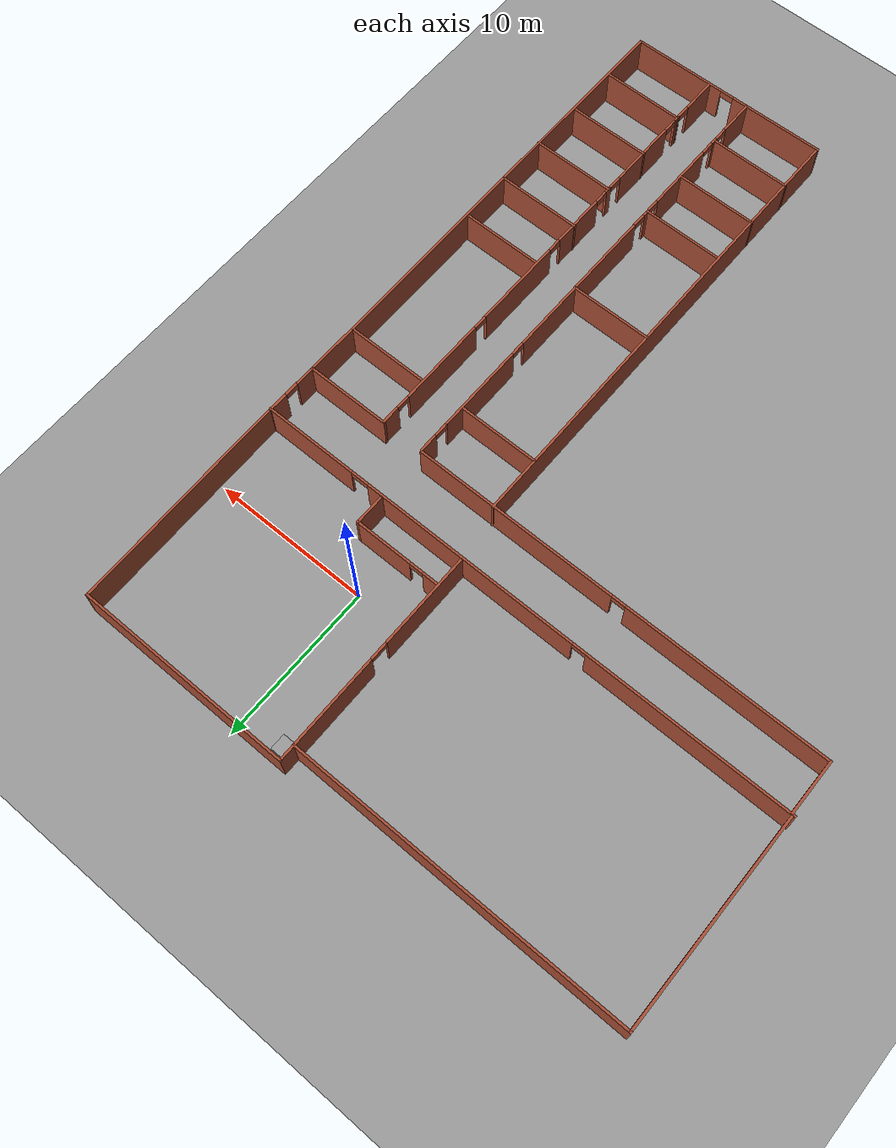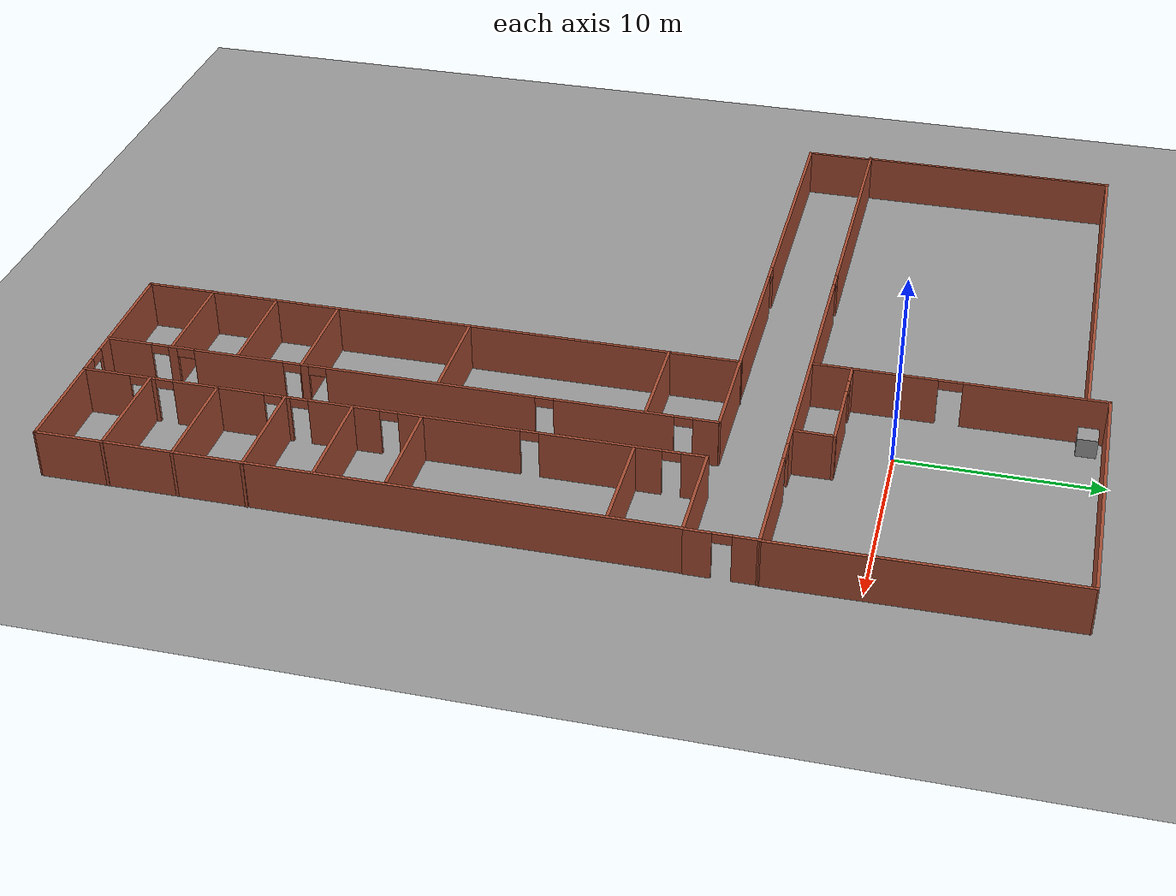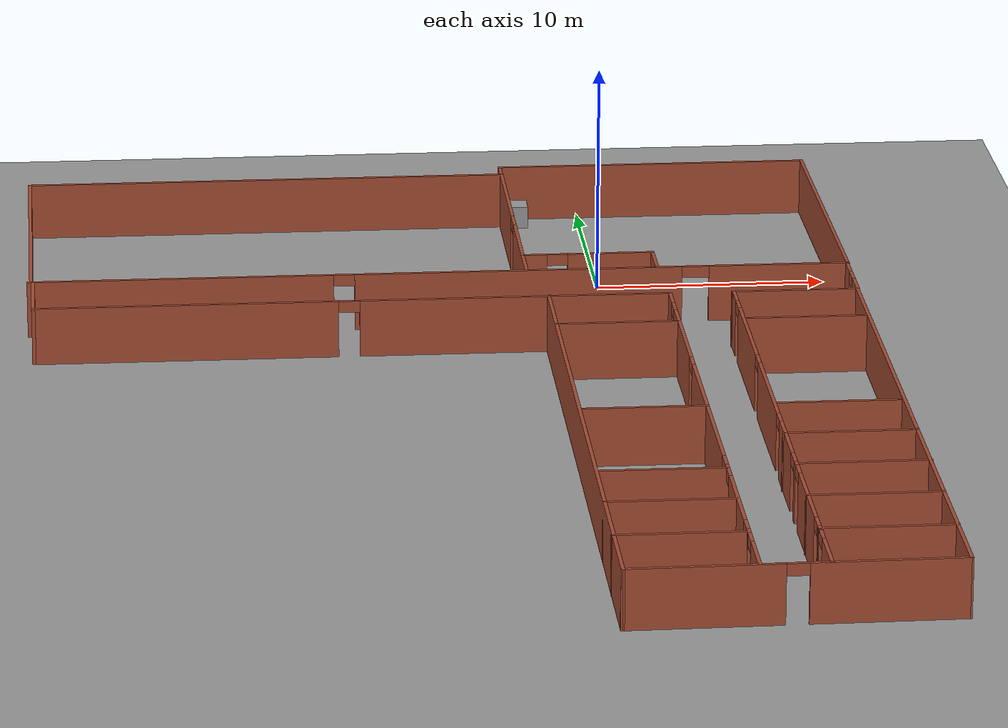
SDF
<sdf version="1.7">
 <model name="fapsmap.obj">
  <light name="sun" type="directional">
   <pose>0 0 10 0 -0 0</pose>
   <diffuse>0.8 0.8 0.8 1</diffuse>
   <specular>0.2 0.2 0.2 1</specular>
   <attenuation>
    <range>1000</range>
    <constant>0.9</constant>
    <linear>0.01</linear>
    <quadratic>0.001</quadratic>
   </attenuation>
   <direction>-0.5 0.1 -0.9</direction>
   <spot><inner_angle>0</inner_angle><outer_angle>0</outer_angle><falloff>0</falloff></spot>
  </light>
  <model name="ground_plane">
   <static>1</static>
   <link name="link">
    <collision name="collision">
     <geometry><plane><normal>0 0 1</normal><size>100 100</size></plane></geometry>
     <surface><friction><ode><mu>100</mu><mu2>50</mu2></ode></friction></surface>
    </collision>
    <visual name="visual">
     <cast_shadows>0</cast_shadows>
     <geometry><plane><normal>0 0 1</normal><size>100 100</size></plane></geometry>
     <material>
      <script><uri>file://media/materials/scripts/gazebo.material</uri><name>Gazebo/Grey</name></script>
     </material>
    </visual>
   </link>
  </model>
  <gravity>0 0 -9.8</gravity>
  <magnetic_field>6e-06 2.3e-05 -4.2e-05</magnetic_field>
  <atmosphere type="adiabatic"/>
  <physics type="ode">
   <max_step_size>0.001</max_step_size>
   <real_time_factor>1</real_time_factor>
   <real_time_update_rate>1000</real_time_update_rate>
  </physics>
  <scene><ambient>0.4 0.4 0.4 1</ambient><background>0.7 0.7 0.7 1</background><shadows>1</shadows></scene>
  <audio><device>default</device></audio>
  <spherical_coordinates>
   <surface_model>EARTH_WGS84</surface_model>
   <latitude_deg>0</latitude_deg>
   <longitude_deg>0</longitude_deg>
   <elevation>0</elevation>
   <heading_deg>0</heading_deg>
  </spherical_coordinates>
  <model name="fapsmap.obj">
   <pose>-7.30116 -14.55 0 0 -0 0</pose>
   <link name="Wall_20">
    <pose>-0.000299 9.9725 0 0 -0 3.1403</pose>
    <visual name="Wall_20_Visual_0">
     <pose>-14.7424 0 1.25 0 -0 0</pose>
     <geometry><box><size>6.13838 0.15 2.5</size></box></geometry>
     <material>
      <script><uri>file://media/materials/scripts/gazebo.material</uri><name>Gazebo/Bricks</name></script>
      <ambient>1 1 1 1</ambient>
     </material>
     <meta><layer>0</layer></meta>
    </visual>
    <collision name="Wall_20_Collision_0">
     <geometry><box><size>6.13838 0.15 2.5</size></box></geometry>
     <pose>-14.7424 0 1.25 0 -0 0</pose>
    </collision>
    <visual name="Wall_20_Visual_1">
     <pose>-3.4046 0 1.25 0 -0 0</pose>
     <geometry><box><size>14.2081 0.15 2.5</size></box></geometry>
     <material>
      <script><uri>file://media/materials/scripts/gazebo.material</uri><name>Gazebo/Bricks</name></script>
      <ambient>1 1 1 1</ambient>
     </material>
     <meta><layer>0</layer></meta>
    </visual>
    <collision name="Wall_20_Collision_1">
     <geometry><box><size>14.2081 0.15 2.5</size></box></geometry>
     <pose>-3.4046 0 1.25 0 -0 0</pose>
    </collision>
    <visual name="Wall_20_Visual_2">
     <pose>11.2055 0 1.25 0 -0 0</pose>
     <geometry><box><size>13.2121 0.15 2.5</size></box></geometry>
     <material>
      <script><uri>file://media/materials/scripts/gazebo.material</uri><name>Gazebo/Bricks</name></script>
      <ambient>1 1 1 1</ambient>
     </material>
     <meta><layer>0</layer></meta>
    </visual>
    <collision name="Wall_20_Collision_2">
     <geometry><box><size>13.2121 0.15 2.5</size></box></geometry>
     <pose>11.2055 0 1.25 0 -0 0</pose>
    </collision>
    <visual name="Wall_20_Visual_3">
     <pose>-11.0909 0 2.25 0 -0 0</pose>
     <geometry><box><size>1.16451 0.15 0.5</size></box></geometry>
     <material>
      <script><uri>file://media/materials/scripts/gazebo.material</uri><name>Gazebo/Bricks</name></script>
      <ambient>1 1 1 1</ambient>
     </material>
     <meta><layer>0</layer></meta>
    </visual>
    <collision name="Wall_20_Collision_3">
     <geometry><box><size>1.16451 0.15 0.5</size></box></geometry>
     <pose>-11.0909 0 2.25 0 -0 0</pose>
    </collision>
    <visual name="Wall_20_Visual_4">
     <pose>4.14945 0 2.25 0 -0 0</pose>
     <geometry><box><size>0.9 0.15 0.5</size></box></geometry>
     <material>
      <script><uri>file://media/materials/scripts/gazebo.material</uri><name>Gazebo/Bricks</name></script>
      <ambient>1 1 1 1</ambient>
     </material>
     <meta><layer>0</layer></meta>
    </visual>
    <collision name="Wall_20_Collision_4">
     <geometry><box><size>0.9 0.15 0.5</size></box></geometry>
     <pose>4.14945 0 2.25 0 -0 0</pose>
    </collision>
   </link>
   <link name="Wall_24">
    <collision name="Wall_24_Collision">
     <geometry><box><size>14.4345 0.15 2.5</size></box></geometry>
     <pose>0 0 1.25 0 -0 0</pose>
    </collision>
    <visual name="Wall_24_Visual">
     <pose>0 0 1.25 0 -0 0</pose>
     <geometry><box><size>14.4345 0.15 2.5</size></box></geometry>
     <material>
      <script><uri>file://media/materials/scripts/gazebo.material</uri><name>Gazebo/Bricks</name></script>
      <ambient>1 1 1 1</ambient>
     </material>
     <meta><layer>0</layer></meta>
    </visual>
    <pose>17.669 17.0915 0 0 -0 1.58022</pose>
   </link>
   <link name="Wall_25">
    <collision name="Wall_25_Collision">
     <geometry><box><size>14 0.15 2.5</size></box></geometry>
     <pose>0 0 1.25 0 -0 0</pose>
    </collision>
    <visual name="Wall_25_Visual">
     <pose>0 0 1.25 0 -0 0</pose>
     <geometry><box><size>14 0.15 2.5</size></box></geometry>
     <material>
      <script><uri>file://media/materials/scripts/gazebo.material</uri><name>Gazebo/Bricks</name></script>
      <ambient>1 1 1 1</ambient>
     </material>
     <meta><layer>0</layer></meta>
    </visual>
    <pose>10.6767 24.2335 0 0 -0 3.14159</pose>
   </link>
   <link name="Wall_26">
    <pose>3.75167 17.1835 0 0 -0 -1.5708</pose>
    <visual name="Wall_26_Visual_0">
     <pose>-3.62942 0 1.25 0 -0 0</pose>
     <geometry><box><size>6.99116 0.15 2.5</size></box></geometry>
     <material>
      <script><uri>file://media/materials/scripts/gazebo.material</uri><name>Gazebo/Bricks</name></script>
      <ambient>1 1 1 1</ambient>
     </material>
     <meta><layer>0</layer></meta>
    </visual>
    <collision name="Wall_26_Collision_0">
     <geometry><box><size>6.99116 0.15 2.5</size></box></geometry>
     <pose>-3.62942 0 1.25 0 -0 0</pose>
    </collision>
    <visual name="Wall_26_Visual_1">
     <pose>4.08058 0 1.25 0 -0 0</pose>
     <geometry><box><size>6.08884 0.15 2.5</size></box></geometry>
     <material>
      <script><uri>file://media/materials/scripts/gazebo.material</uri><name>Gazebo/Bricks</name></script>
      <ambient>1 1 1 1</ambient>
     </material>
     <meta><layer>0</layer></meta>
    </visual>
    <collision name="Wall_26_Collision_1">
     <geometry><box><size>6.08884 0.15 2.5</size></box></geometry>
     <pose>4.08058 0 1.25 0 -0 0</pose>
    </collision>
    <visual name="Wall_26_Visual_2">
     <pose>0.451159 0 2.25 0 -0 0</pose>
     <geometry><box><size>1.17 0.15 0.5</size></box></geometry>
     <material>
      <script><uri>file://media/materials/scripts/gazebo.material</uri><name>Gazebo/Bricks</name></script>
      <ambient>1 1 1 1</ambient>
     </material>
     <meta><layer>0</layer></meta>
    </visual>
    <collision name="Wall_26_Collision_2">
     <geometry><box><size>1.17 0.15 0.5</size></box></geometry>
     <pose>0.451159 0 2.25 0 -0 0</pose>
    </collision>
   </link>
   <link name="Wall_28">
    <collision name="Wall_28_Collision">
     <geometry><box><size>21.5 0.15 2.5</size></box></geometry>
     <pose>0 0 1.25 0 -0 0</pose>
    </collision>
    <visual name="Wall_28_Visual">
     <pose>0 0 1.25 0 -0 0</pose>
     <geometry><box><size>21.5 0.15 2.5</size></box></geometry>
     <material>
      <script><uri>file://media/materials/scripts/gazebo.material</uri><name>Gazebo/Bricks</name></script>
      <ambient>1 1 1 1</ambient>
     </material>
     <meta><layer>0</layer></meta>
    </visual>
    <pose>-6.95273 23.218 0 0 -0 3.14159</pose>
   </link>
   <link name="Wall_29">
    <collision name="Wall_29_Collision">
     <geometry><box><size>13.25 0.15 2.5</size></box></geometry>
     <pose>0 0 1.25 0 -0 0</pose>
    </collision>
    <visual name="Wall_29_Visual">
     <pose>0 0 1.25 0 -0 0</pose>
     <geometry><box><size>13.25 0.15 2.5</size></box></geometry>
     <material>
      <script><uri>file://media/materials/scripts/gazebo.material</uri><name>Gazebo/Bricks</name></script>
      <ambient>1 1 1 1</ambient>
     </material>
     <meta><layer>0</layer></meta>
    </visual>
    <pose>-17.6277 16.668 0 0 -0 -1.5708</pose>
   </link>
   <link name="Wall_33">
    <pose>17.7055 8.30531 0 0 -0 -1.5708</pose>
    <visual name="Wall_33_Visual_0">
     <pose>-1.0981 0 1.25 0 -0 0</pose>
     <geometry><box><size>1.30381 0.15 2.5</size></box></geometry>
     <material>
      <script><uri>file://media/materials/scripts/gazebo.material</uri><name>Gazebo/Bricks</name></script>
      <ambient>1 1 1 1</ambient>
     </material>
     <meta><layer>0</layer></meta>
    </visual>
    <collision name="Wall_33_Collision_0">
     <geometry><box><size>1.30381 0.15 2.5</size></box></geometry>
     <pose>-1.0981 0 1.25 0 -0 0</pose>
    </collision>
    <visual name="Wall_33_Visual_1">
     <pose>1.1019 0 1.25 0 -0 0</pose>
     <geometry><box><size>1.29619 0.15 2.5</size></box></geometry>
     <material>
      <script><uri>file://media/materials/scripts/gazebo.material</uri><name>Gazebo/Bricks</name></script>
      <ambient>1 1 1 1</ambient>
     </material>
     <meta><layer>0</layer></meta>
    </visual>
    <collision name="Wall_33_Collision_1">
     <geometry><box><size>1.29619 0.15 2.5</size></box></geometry>
     <pose>1.1019 0 1.25 0 -0 0</pose>
    </collision>
    <visual name="Wall_33_Visual_2">
     <pose>0.003805 0 2.25 0 -0 0</pose>
     <geometry><box><size>0.9 0.15 0.5</size></box></geometry>
     <material>
      <script><uri>file://media/materials/scripts/gazebo.material</uri><name>Gazebo/Bricks</name></script>
      <ambient>1 1 1 1</ambient>
     </material>
     <meta><layer>0</layer></meta>
    </visual>
    <collision name="Wall_33_Collision_2">
     <geometry><box><size>0.9 0.15 0.5</size></box></geometry>
     <pose>0.003805 0 2.25 0 -0 0</pose>
    </collision>
   </link>
   <link name="Wall_39">
    <collision name="Wall_39_Collision">
     <geometry><box><size>5.5 0.15 2.5</size></box></geometry>
     <pose>0 0 1.25 0 -0 0</pose>
    </collision>
    <visual name="Wall_39_Visual">
     <pose>0 0 1.25 0 -0 0</pose>
     <geometry><box><size>5.5 0.15 2.5</size></box></geometry>
     <material>
      <script><uri>file://media/materials/scripts/gazebo.material</uri><name>Gazebo/Bricks</name></script>
      <ambient>1 1 1 1</ambient>
     </material>
     <meta><layer>0</layer></meta>
    </visual>
    <pose>15.0039 6.56104 0 0 -0 0</pose>
   </link>
   <link name="Wall_41">
    <pose>-4.00364 6.5805 0 0 -0 3.14159</pose>
    <visual name="Wall_41_Visual_0">
     <pose>-6.97405 0 1.25 0 -0 0</pose>
     <geometry><box><size>13.3019 0.15 2.5</size></box></geometry>
     <material>
      <script><uri>file://media/materials/scripts/gazebo.material</uri><name>Gazebo/Bricks</name></script>
      <ambient>1 1 1 1</ambient>
     </material>
     <meta><layer>0</layer></meta>
    </visual>
    <collision name="Wall_41_Collision_0">
     <geometry><box><size>13.3019 0.15 2.5</size></box></geometry>
     <pose>-6.97405 0 1.25 0 -0 0</pose>
    </collision>
    <visual name="Wall_41_Visual_1">
     <pose>7.10095 0 1.25 0 -0 0</pose>
     <geometry><box><size>13.0481 0.15 2.5</size></box></geometry>
     <material>
      <script><uri>file://media/materials/scripts/gazebo.material</uri><name>Gazebo/Bricks</name></script>
      <ambient>1 1 1 1</ambient>
     </material>
     <meta><layer>0</layer></meta>
    </visual>
    <collision name="Wall_41_Collision_1">
     <geometry><box><size>13.0481 0.15 2.5</size></box></geometry>
     <pose>7.10095 0 1.25 0 -0 0</pose>
    </collision>
    <visual name="Wall_41_Visual_2">
     <pose>0.126898 0 2.25 0 -0 0</pose>
     <geometry><box><size>0.9 0.15 0.5</size></box></geometry>
     <material>
      <script><uri>file://media/materials/scripts/gazebo.material</uri><name>Gazebo/Bricks</name></script>
      <ambient>1 1 1 1</ambient>
     </material>
     <meta><layer>0</layer></meta>
    </visual>
    <collision name="Wall_41_Collision_2">
     <geometry><box><size>0.9 0.15 0.5</size></box></geometry>
     <pose>0.126898 0 2.25 0 -0 0</pose>
    </collision>
   </link>
   <link name="Wall_42">
    <collision name="Wall_42_Collision">
     <geometry><box><size>3.5 0.15 2.5</size></box></geometry>
     <pose>0 0 1.25 0 -0 0</pose>
    </collision>
    <visual name="Wall_42_Visual">
     <pose>0 0 1.25 0 -0 0</pose>
     <geometry><box><size>3.5 0.15 2.5</size></box></geometry>
     <material>
      <script><uri>file://media/materials/scripts/gazebo.material</uri><name>Gazebo/Bricks</name></script>
      <ambient>1 1 1 1</ambient>
     </material>
     <meta><layer>0</layer></meta>
    </visual>
    <pose>-17.5536 8.2555 0 0 -0 1.5708</pose>
   </link>
   <link name="Wall_44">
    <pose>12.3594 -8.7985 0 0 -0 -1.5708</pose>
    <visual name="Wall_44_Visual_0">
     <pose>-14.7698 0 1.25 0 -0 0</pose>
     <geometry><box><size>1.21049 0.15 2.5</size></box></geometry>
     <material>
      <script><uri>file://media/materials/scripts/gazebo.material</uri><name>Gazebo/Bricks</name></script>
      <ambient>1 1 1 1</ambient>
     </material>
     <meta><layer>0</layer></meta>
    </visual>
    <collision name="Wall_44_Collision_0">
     <geometry><box><size>1.21049 0.15 2.5</size></box></geometry>
     <pose>-14.7698 0 1.25 0 -0 0</pose>
    </collision>
    <visual name="Wall_44_Visual_1">
     <pose>-10.3459 0 1.25 0 -0 0</pose>
     <geometry><box><size>5.8373 0.15 2.5</size></box></geometry>
     <material>
      <script><uri>file://media/materials/scripts/gazebo.material</uri><name>Gazebo/Bricks</name></script>
      <ambient>1 1 1 1</ambient>
     </material>
     <meta><layer>0</layer></meta>
    </visual>
    <collision name="Wall_44_Collision_1">
     <geometry><box><size>5.8373 0.15 2.5</size></box></geometry>
     <pose>-10.3459 0 1.25 0 -0 0</pose>
    </collision>
    <visual name="Wall_44_Visual_2">
     <pose>-3.56241 0 1.25 0 -0 0</pose>
     <geometry><box><size>5.92959 0.15 2.5</size></box></geometry>
     <material>
      <script><uri>file://media/materials/scripts/gazebo.material</uri><name>Gazebo/Bricks</name></script>
      <ambient>1 1 1 1</ambient>
     </material>
     <meta><layer>0</layer></meta>
    </visual>
    <collision name="Wall_44_Collision_2">
     <geometry><box><size>5.92959 0.15 2.5</size></box></geometry>
     <pose>-3.56241 0 1.25 0 -0 0</pose>
    </collision>
    <visual name="Wall_44_Visual_3">
     <pose>2.08277 0 1.25 0 -0 0</pose>
     <geometry><box><size>3.56077 0.15 2.5</size></box></geometry>
     <material>
      <script><uri>file://media/materials/scripts/gazebo.material</uri><name>Gazebo/Bricks</name></script>
      <ambient>1 1 1 1</ambient>
     </material>
     <meta><layer>0</layer></meta>
    </visual>
    <collision name="Wall_44_Collision_3">
     <geometry><box><size>3.56077 0.15 2.5</size></box></geometry>
     <pose>2.08277 0 1.25 0 -0 0</pose>
    </collision>
    <visual name="Wall_44_Visual_4">
     <pose>4.97458 0 1.25 0 -0 0</pose>
     <geometry><box><size>0.422849 0.15 2.5</size></box></geometry>
     <material>
      <script><uri>file://media/materials/scripts/gazebo.material</uri><name>Gazebo/Bricks</name></script>
      <ambient>1 1 1 1</ambient>
     </material>
     <meta><layer>0</layer></meta>
    </visual>
    <collision name="Wall_44_Collision_4">
     <geometry><box><size>0.422849 0.15 2.5</size></box></geometry>
     <pose>4.97458 0 1.25 0 -0 0</pose>
    </collision>
    <visual name="Wall_44_Visual_5">
     <pose>8.40476 0 1.25 0 -0 0</pose>
     <geometry><box><size>4.63751 0.15 2.5</size></box></geometry>
     <material>
      <script><uri>file://media/materials/scripts/gazebo.material</uri><name>Gazebo/Bricks</name></script>
      <ambient>1 1 1 1</ambient>
     </material>
     <meta><layer>0</layer></meta>
    </visual>
    <collision name="Wall_44_Collision_5">
     <geometry><box><size>4.63751 0.15 2.5</size></box></geometry>
     <pose>8.40476 0 1.25 0 -0 0</pose>
    </collision>
    <visual name="Wall_44_Visual_6">
     <pose>11.8349 0 1.25 0 -0 0</pose>
     <geometry><box><size>0.422849 0.15 2.5</size></box></geometry>
     <material>
      <script><uri>file://media/materials/scripts/gazebo.material</uri><name>Gazebo/Bricks</name></script>
      <ambient>1 1 1 1</ambient>
     </material>
     <meta><layer>0</layer></meta>
    </visual>
    <collision name="Wall_44_Collision_6">
     <geometry><box><size>0.422849 0.15 2.5</size></box></geometry>
     <pose>11.8349 0 1.25 0 -0 0</pose>
    </collision>
    <visual name="Wall_44_Visual_7">
     <pose>14.1607 0 1.25 0 -0 0</pose>
     <geometry><box><size>2.42863 0.15 2.5</size></box></geometry>
     <material>
      <script><uri>file://media/materials/scripts/gazebo.material</uri><name>Gazebo/Bricks</name></script>
      <ambient>1 1 1 1</ambient>
     </material>
     <meta><layer>0</layer></meta>
    </visual>
    <collision name="Wall_44_Collision_7">
     <geometry><box><size>2.42863 0.15 2.5</size></box></geometry>
     <pose>14.1607 0 1.25 0 -0 0</pose>
    </collision>
    <visual name="Wall_44_Visual_8">
     <pose>-13.7145 0 2.25 0 -0 0</pose>
     <geometry><box><size>0.9 0.15 0.5</size></box></geometry>
     <material>
      <script><uri>file://media/materials/scripts/gazebo.material</uri><name>Gazebo/Bricks</name></script>
      <ambient>1 1 1 1</ambient>
     </material>
     <meta><layer>0</layer></meta>
    </visual>
    <collision name="Wall_44_Collision_8">
     <geometry><box><size>0.9 0.15 0.5</size></box></geometry>
     <pose>-13.7145 0 2.25 0 -0 0</pose>
    </collision>
    <visual name="Wall_44_Visual_9">
     <pose>-6.97721 0 2.25 0 -0 0</pose>
     <geometry><box><size>0.9 0.15 0.5</size></box></geometry>
     <material>
      <script><uri>file://media/materials/scripts/gazebo.material</uri><name>Gazebo/Bricks</name></script>
      <ambient>1 1 1 1</ambient>
     </material>
     <meta><layer>0</layer></meta>
    </visual>
    <collision name="Wall_44_Collision_9">
     <geometry><box><size>0.9 0.15 0.5</size></box></geometry>
     <pose>-6.97721 0 2.25 0 -0 0</pose>
    </collision>
    <visual name="Wall_44_Visual_10">
     <pose>-0.147614 0 2.25 0 -0 0</pose>
     <geometry><box><size>0.9 0.15 0.5</size></box></geometry>
     <material>
      <script><uri>file://media/materials/scripts/gazebo.material</uri><name>Gazebo/Bricks</name></script>
      <ambient>1 1 1 1</ambient>
     </material>
     <meta><layer>0</layer></meta>
    </visual>
    <collision name="Wall_44_Collision_10">
     <geometry><box><size>0.9 0.15 0.5</size></box></geometry>
     <pose>-0.147614 0 2.25 0 -0 0</pose>
    </collision>
    <visual name="Wall_44_Visual_11">
     <pose>4.31316 0 2.25 0 -0 0</pose>
     <geometry><box><size>0.9 0.15 0.5</size></box></geometry>
     <material>
      <script><uri>file://media/materials/scripts/gazebo.material</uri><name>Gazebo/Bricks</name></script>
      <ambient>1 1 1 1</ambient>
     </material>
     <meta><layer>0</layer></meta>
    </visual>
    <collision name="Wall_44_Collision_11">
     <geometry><box><size>0.9 0.15 0.5</size></box></geometry>
     <pose>4.31316 0 2.25 0 -0 0</pose>
    </collision>
    <visual name="Wall_44_Visual_12">
     <pose>5.63601 0 2.25 0 -0 0</pose>
     <geometry><box><size>0.9 0.15 0.5</size></box></geometry>
     <material>
      <script><uri>file://media/materials/scripts/gazebo.material</uri><name>Gazebo/Bricks</name></script>
      <ambient>1 1 1 1</ambient>
     </material>
     <meta><layer>0</layer></meta>
    </visual>
    <collision name="Wall_44_Collision_12">
     <geometry><box><size>0.9 0.15 0.5</size></box></geometry>
     <pose>5.63601 0 2.25 0 -0 0</pose>
    </collision>
    <visual name="Wall_44_Visual_13">
     <pose>11.1735 0 2.25 0 -0 0</pose>
     <geometry><box><size>0.9 0.15 0.5</size></box></geometry>
     <material>
      <script><uri>file://media/materials/scripts/gazebo.material</uri><name>Gazebo/Bricks</name></script>
      <ambient>1 1 1 1</ambient>
     </material>
     <meta><layer>0</layer></meta>
    </visual>
    <collision name="Wall_44_Collision_13">
     <geometry><box><size>0.9 0.15 0.5</size></box></geometry>
     <pose>11.1735 0 2.25 0 -0 0</pose>
    </collision>
    <visual name="Wall_44_Visual_14">
     <pose>12.4964 0 2.25 0 -0 0</pose>
     <geometry><box><size>0.9 0.15 0.5</size></box></geometry>
     <material>
      <script><uri>file://media/materials/scripts/gazebo.material</uri><name>Gazebo/Bricks</name></script>
      <ambient>1 1 1 1</ambient>
     </material>
     <meta><layer>0</layer></meta>
    </visual>
    <collision name="Wall_44_Collision_14">
     <geometry><box><size>0.9 0.15 0.5</size></box></geometry>
     <pose>12.4964 0 2.25 0 -0 0</pose>
    </collision>
   </link>
   <link name="Wall_47">
    <pose>9.60614 -8.80383 0 0 -0 -1.5708</pose>
    <visual name="Wall_47_Visual_0">
     <pose>-14.757 0 1.25 0 -0 0</pose>
     <geometry><box><size>1.23592 0.15 2.5</size></box></geometry>
     <material>
      <script><uri>file://media/materials/scripts/gazebo.material</uri><name>Gazebo/Bricks</name></script>
      <ambient>1 1 1 1</ambient>
     </material>
     <meta><layer>0</layer></meta>
    </visual>
    <collision name="Wall_47_Collision_0">
     <geometry><box><size>1.23592 0.15 2.5</size></box></geometry>
     <pose>-14.757 0 1.25 0 -0 0</pose>
    </collision>
    <visual name="Wall_47_Visual_1">
     <pose>-10.3204 0 1.25 0 -0 0</pose>
     <geometry><box><size>5.8373 0.15 2.5</size></box></geometry>
     <material>
      <script><uri>file://media/materials/scripts/gazebo.material</uri><name>Gazebo/Bricks</name></script>
      <ambient>1 1 1 1</ambient>
     </material>
     <meta><layer>0</layer></meta>
    </visual>
    <collision name="Wall_47_Collision_1">
     <geometry><box><size>5.8373 0.15 2.5</size></box></geometry>
     <pose>-10.3204 0 1.25 0 -0 0</pose>
    </collision>
    <visual name="Wall_47_Visual_2">
     <pose>-1.26045 0 1.25 0 -0 0</pose>
     <geometry><box><size>10.4827 0.15 2.5</size></box></geometry>
     <material>
      <script><uri>file://media/materials/scripts/gazebo.material</uri><name>Gazebo/Bricks</name></script>
      <ambient>1 1 1 1</ambient>
     </material>
     <meta><layer>0</layer></meta>
    </visual>
    <collision name="Wall_47_Collision_2">
     <geometry><box><size>10.4827 0.15 2.5</size></box></geometry>
     <pose>-1.26045 0 1.25 0 -0 0</pose>
    </collision>
    <visual name="Wall_47_Visual_3">
     <pose>5.07693 0 1.25 0 -0 0</pose>
     <geometry><box><size>0.392085 0.15 2.5</size></box></geometry>
     <material>
      <script><uri>file://media/materials/scripts/gazebo.material</uri><name>Gazebo/Bricks</name></script>
      <ambient>1 1 1 1</ambient>
     </material>
     <meta><layer>0</layer></meta>
    </visual>
    <collision name="Wall_47_Collision_3">
     <geometry><box><size>0.392085 0.15 2.5</size></box></geometry>
     <pose>5.07693 0 1.25 0 -0 0</pose>
    </collision>
    <visual name="Wall_47_Visual_4">
     <pose>8.49172 0 1.25 0 -0 0</pose>
     <geometry><box><size>4.63751 0.15 2.5</size></box></geometry>
     <material>
      <script><uri>file://media/materials/scripts/gazebo.material</uri><name>Gazebo/Bricks</name></script>
      <ambient>1 1 1 1</ambient>
     </material>
     <meta><layer>0</layer></meta>
    </visual>
    <collision name="Wall_47_Collision_4">
     <geometry><box><size>4.63751 0.15 2.5</size></box></geometry>
     <pose>8.49172 0 1.25 0 -0 0</pose>
    </collision>
    <visual name="Wall_47_Visual_5">
     <pose>11.9373 0 1.25 0 -0 0</pose>
     <geometry><box><size>0.453613 0.15 2.5</size></box></geometry>
     <material>
      <script><uri>file://media/materials/scripts/gazebo.material</uri><name>Gazebo/Bricks</name></script>
      <ambient>1 1 1 1</ambient>
     </material>
     <meta><layer>0</layer></meta>
    </visual>
    <collision name="Wall_47_Collision_5">
     <geometry><box><size>0.453613 0.15 2.5</size></box></geometry>
     <pose>11.9373 0 1.25 0 -0 0</pose>
    </collision>
    <visual name="Wall_47_Visual_6">
     <pose>14.2195 0 1.25 0 -0 0</pose>
     <geometry><box><size>2.31091 0.15 2.5</size></box></geometry>
     <material>
      <script><uri>file://media/materials/scripts/gazebo.material</uri><name>Gazebo/Bricks</name></script>
      <ambient>1 1 1 1</ambient>
     </material>
     <meta><layer>0</layer></meta>
    </visual>
    <collision name="Wall_47_Collision_6">
     <geometry><box><size>2.31091 0.15 2.5</size></box></geometry>
     <pose>14.2195 0 1.25 0 -0 0</pose>
    </collision>
    <visual name="Wall_47_Visual_7">
     <pose>-13.6891 0 2.25 0 -0 0</pose>
     <geometry><box><size>0.9 0.15 0.5</size></box></geometry>
     <material>
      <script><uri>file://media/materials/scripts/gazebo.material</uri><name>Gazebo/Bricks</name></script>
      <ambient>1 1 1 1</ambient>
     </material>
     <meta><layer>0</layer></meta>
    </visual>
    <collision name="Wall_47_Collision_7">
     <geometry><box><size>0.9 0.15 0.5</size></box></geometry>
     <pose>-13.6891 0 2.25 0 -0 0</pose>
    </collision>
    <visual name="Wall_47_Visual_8">
     <pose>-6.95177 0 2.25 0 -0 0</pose>
     <geometry><box><size>0.9 0.15 0.5</size></box></geometry>
     <material>
      <script><uri>file://media/materials/scripts/gazebo.material</uri><name>Gazebo/Bricks</name></script>
      <ambient>1 1 1 1</ambient>
     </material>
     <meta><layer>0</layer></meta>
    </visual>
    <collision name="Wall_47_Collision_8">
     <geometry><box><size>0.9 0.15 0.5</size></box></geometry>
     <pose>-6.95177 0 2.25 0 -0 0</pose>
    </collision>
    <visual name="Wall_47_Visual_9">
     <pose>4.43088 0 2.25 0 -0 0</pose>
     <geometry><box><size>0.9 0.15 0.5</size></box></geometry>
     <material>
      <script><uri>file://media/materials/scripts/gazebo.material</uri><name>Gazebo/Bricks</name></script>
      <ambient>1 1 1 1</ambient>
     </material>
     <meta><layer>0</layer></meta>
    </visual>
    <collision name="Wall_47_Collision_9">
     <geometry><box><size>0.9 0.15 0.5</size></box></geometry>
     <pose>4.43088 0 2.25 0 -0 0</pose>
    </collision>
    <visual name="Wall_47_Visual_10">
     <pose>5.72297 0 2.25 0 -0 0</pose>
     <geometry><box><size>0.9 0.15 0.5</size></box></geometry>
     <material>
      <script><uri>file://media/materials/scripts/gazebo.material</uri><name>Gazebo/Bricks</name></script>
      <ambient>1 1 1 1</ambient>
     </material>
     <meta><layer>0</layer></meta>
    </visual>
    <collision name="Wall_47_Collision_10">
     <geometry><box><size>0.9 0.15 0.5</size></box></geometry>
     <pose>5.72297 0 2.25 0 -0 0</pose>
    </collision>
    <visual name="Wall_47_Visual_11">
     <pose>11.2605 0 2.25 0 -0 0</pose>
     <geometry><box><size>0.9 0.15 0.5</size></box></geometry>
     <material>
      <script><uri>file://media/materials/scripts/gazebo.material</uri><name>Gazebo/Bricks</name></script>
      <ambient>1 1 1 1</ambient>
     </material>
     <meta><layer>0</layer></meta>
    </visual>
    <collision name="Wall_47_Collision_11">
     <geometry><box><size>0.9 0.15 0.5</size></box></geometry>
     <pose>11.2605 0 2.25 0 -0 0</pose>
    </collision>
    <visual name="Wall_47_Visual_12">
     <pose>12.6141 0 2.25 0 -0 0</pose>
     <geometry><box><size>0.9 0.15 0.5</size></box></geometry>
     <material>
      <script><uri>file://media/materials/scripts/gazebo.material</uri><name>Gazebo/Bricks</name></script>
      <ambient>1 1 1 1</ambient>
     </material>
     <meta><layer>0</layer></meta>
    </visual>
    <collision name="Wall_47_Collision_12">
     <geometry><box><size>0.9 0.15 0.5</size></box></geometry>
     <pose>12.6141 0 2.25 0 -0 0</pose>
    </collision>
   </link>
   <link name="Wall_49">
    <collision name="Wall_49_Collision">
     <geometry><box><size>2 0.15 2.5</size></box></geometry>
     <pose>0 0 1.25 0 -0 0</pose>
    </collision>
    <visual name="Wall_49_Visual">
     <pose>0 0 1.25 0 -0 0</pose>
     <geometry><box><size>2 0.15 2.5</size></box></geometry>
     <material>
      <script><uri>file://media/materials/scripts/gazebo.material</uri><name>Gazebo/Bricks</name></script>
      <ambient>1 1 1 1</ambient>
     </material>
     <meta><layer>0</layer></meta>
    </visual>
    <pose>9.43012 11.0478 0 0 -0 1.5708</pose>
   </link>
   <link name="Wall_52">
    <pose>6.63012 11.9728 0 0 -0 3.14159</pose>
    <visual name="Wall_52_Visual_0">
     <pose>-0.979114 0 1.25 0 -0 0</pose>
     <geometry><box><size>3.79177 0.15 2.5</size></box></geometry>
     <material>
      <script><uri>file://media/materials/scripts/gazebo.material</uri><name>Gazebo/Bricks</name></script>
      <ambient>1 1 1 1</ambient>
     </material>
     <meta><layer>0</layer></meta>
    </visual>
    <collision name="Wall_52_Collision_0">
     <geometry><box><size>3.79177 0.15 2.5</size></box></geometry>
     <pose>-0.979114 0 1.25 0 -0 0</pose>
    </collision>
    <visual name="Wall_52_Visual_1">
     <pose>2.34589 0 1.25 0 -0 0</pose>
     <geometry><box><size>1.05823 0.15 2.5</size></box></geometry>
     <material>
      <script><uri>file://media/materials/scripts/gazebo.material</uri><name>Gazebo/Bricks</name></script>
      <ambient>1 1 1 1</ambient>
     </material>
     <meta><layer>0</layer></meta>
    </visual>
    <collision name="Wall_52_Collision_1">
     <geometry><box><size>1.05823 0.15 2.5</size></box></geometry>
     <pose>2.34589 0 1.25 0 -0 0</pose>
    </collision>
    <visual name="Wall_52_Visual_2">
     <pose>1.36677 0 2.25 0 -0 0</pose>
     <geometry><box><size>0.9 0.15 0.5</size></box></geometry>
     <material>
      <script><uri>file://media/materials/scripts/gazebo.material</uri><name>Gazebo/Bricks</name></script>
      <ambient>1 1 1 1</ambient>
     </material>
     <meta><layer>0</layer></meta>
    </visual>
    <collision name="Wall_52_Collision_2">
     <geometry><box><size>0.9 0.15 0.5</size></box></geometry>
     <pose>1.36677 0 2.25 0 -0 0</pose>
    </collision>
   </link>
   <link name="Wall_54">
    <collision name="Wall_54_Collision">
     <geometry><box><size>30.75 0.15 2.5</size></box></geometry>
     <pose>0 0 1.25 0 -0 0</pose>
    </collision>
    <visual name="Wall_54_Visual">
     <pose>0 0 1.25 0 -0 0</pose>
     <geometry><box><size>30.75 0.15 2.5</size></box></geometry>
     <material>
      <script><uri>file://media/materials/scripts/gazebo.material</uri><name>Gazebo/Bricks</name></script>
      <ambient>1 1 1 1</ambient>
     </material>
     <meta><layer>0</layer></meta>
    </visual>
    <pose>17.6789 -8.73896 0 0 -0 -1.5708</pose>
   </link>
   <link name="Wall_58">
    <collision name="Wall_58_Collision">
     <geometry><box><size>31 0.15 2.5</size></box></geometry>
     <pose>0 0 1.25 0 -0 0</pose>
    </collision>
    <visual name="Wall_58_Visual">
     <pose>0 0 1.25 0 -0 0</pose>
     <geometry><box><size>31 0.15 2.5</size></box></geometry>
     <material>
      <script><uri>file://media/materials/scripts/gazebo.material</uri><name>Gazebo/Bricks</name></script>
      <ambient>1 1 1 1</ambient>
     </material>
     <meta><layer>0</layer></meta>
    </visual>
    <pose>4.41048 -8.80806 0 0 -0 -1.5708</pose>
   </link>
   <link name="Wall_64">
    <pose>11.0447 -24.136 0 0 -0 0.014628</pose>
    <visual name="Wall_64_Visual_0">
     <pose>-3.56851 0 1.25 0 -0 0</pose>
     <geometry><box><size>6.28282 0.15 2.5</size></box></geometry>
     <material>
      <script><uri>file://media/materials/scripts/gazebo.material</uri><name>Gazebo/Bricks</name></script>
      <ambient>1 1 1 1</ambient>
     </material>
     <meta><layer>0</layer></meta>
    </visual>
    <collision name="Wall_64_Collision_0">
     <geometry><box><size>6.28282 0.15 2.5</size></box></geometry>
     <pose>-3.56851 0 1.25 0 -0 0</pose>
    </collision>
    <visual name="Wall_64_Visual_1">
     <pose>3.59141 0 1.25 0 -0 0</pose>
     <geometry><box><size>6.23701 0.15 2.5</size></box></geometry>
     <material>
      <script><uri>file://media/materials/scripts/gazebo.material</uri><name>Gazebo/Bricks</name></script>
      <ambient>1 1 1 1</ambient>
     </material>
     <meta><layer>0</layer></meta>
    </visual>
    <collision name="Wall_64_Collision_1">
     <geometry><box><size>6.23701 0.15 2.5</size></box></geometry>
     <pose>3.59141 0 1.25 0 -0 0</pose>
    </collision>
    <visual name="Wall_64_Visual_2">
     <pose>0.022902 0 2.25 0 -0 0</pose>
     <geometry><box><size>0.9 0.15 0.5</size></box></geometry>
     <material>
      <script><uri>file://media/materials/scripts/gazebo.material</uri><name>Gazebo/Bricks</name></script>
      <ambient>1 1 1 1</ambient>
     </material>
     <meta><layer>0</layer></meta>
    </visual>
    <collision name="Wall_64_Collision_2">
     <geometry><box><size>0.9 0.15 0.5</size></box></geometry>
     <pose>0.022902 0 2.25 0 -0 0</pose>
    </collision>
   </link>
   <link name="Wall_66">
    <collision name="Wall_66_Collision">
     <geometry><box><size>5.25 0.15 2.5</size></box></geometry>
     <pose>0 0 1.25 0 -0 0</pose>
    </collision>
    <visual name="Wall_66_Visual">
     <pose>0 0 1.25 0 -0 0</pose>
     <geometry><box><size>5.25 0.15 2.5</size></box></geometry>
     <material>
      <script><uri>file://media/materials/scripts/gazebo.material</uri><name>Gazebo/Bricks</name></script>
      <ambient>1 1 1 1</ambient>
     </material>
     <meta><layer>0</layer></meta>
    </visual>
    <pose>6.96966 3.04794 0 0 -0 0</pose>
   </link>
   <link name="Wall_68">
    <collision name="Wall_68_Collision">
     <geometry><box><size>5.25 0.15 2.5</size></box></geometry>
     <pose>0 0 1.25 0 -0 0</pose>
    </collision>
    <visual name="Wall_68_Visual">
     <pose>0 0 1.25 0 -0 0</pose>
     <geometry><box><size>5.25 0.15 2.5</size></box></geometry>
     <material>
      <script><uri>file://media/materials/scripts/gazebo.material</uri><name>Gazebo/Bricks</name></script>
      <ambient>1 1 1 1</ambient>
     </material>
     <meta><layer>0</layer></meta>
    </visual>
    <pose>15.066 3.17 0 0 -0 0</pose>
   </link>
   <link name="Wall_70">
    <collision name="Wall_70_Collision">
     <geometry><box><size>5.25 0.15 2.5</size></box></geometry>
     <pose>0 0 1.25 0 -0 0</pose>
    </collision>
    <visual name="Wall_70_Visual">
     <pose>0 0 1.25 0 -0 0</pose>
     <geometry><box><size>5.25 0.15 2.5</size></box></geometry>
     <material>
      <script><uri>file://media/materials/scripts/gazebo.material</uri><name>Gazebo/Bricks</name></script>
      <ambient>1 1 1 1</ambient>
     </material>
     <meta><layer>0</layer></meta>
    </visual>
    <pose>7.05103 -7.12338 0 0 -0 0</pose>
   </link>
   <link name="Wall_72">
    <collision name="Wall_72_Collision">
     <geometry><box><size>5.25 0.15 2.5</size></box></geometry>
     <pose>0 0 1.25 0 -0 0</pose>
    </collision>
    <visual name="Wall_72_Visual">
     <pose>0 0 1.25 0 -0 0</pose>
     <geometry><box><size>5.25 0.15 2.5</size></box></geometry>
     <material>
      <script><uri>file://media/materials/scripts/gazebo.material</uri><name>Gazebo/Bricks</name></script>
      <ambient>1 1 1 1</ambient>
     </material>
     <meta><layer>0</layer></meta>
    </visual>
    <pose>14.9376 -7.02177 0 0 -0 0</pose>
   </link>
   <link name="Wall_75">
    <collision name="Wall_75_Collision">
     <geometry><box><size>5.25 0.15 2.5</size></box></geometry>
     <pose>0 0 1.25 0 -0 0</pose>
    </collision>
    <visual name="Wall_75_Visual">
     <pose>0 0 1.25 0 -0 0</pose>
     <geometry><box><size>5.25 0.15 2.5</size></box></geometry>
     <material>
      <script><uri>file://media/materials/scripts/gazebo.material</uri><name>Gazebo/Bricks</name></script>
      <ambient>1 1 1 1</ambient>
     </material>
     <meta><layer>0</layer></meta>
    </visual>
    <pose>7.05328 -14.0558 0 0 -0 0</pose>
   </link>
   <link name="Wall_77">
    <collision name="Wall_77_Collision">
     <geometry><box><size>5.5 0.15 2.5</size></box></geometry>
     <pose>0 0 1.25 0 -0 0</pose>
    </collision>
    <visual name="Wall_77_Visual">
     <pose>0 0 1.25 0 -0 0</pose>
     <geometry><box><size>5.5 0.15 2.5</size></box></geometry>
     <material>
      <script><uri>file://media/materials/scripts/gazebo.material</uri><name>Gazebo/Bricks</name></script>
      <ambient>1 1 1 1</ambient>
     </material>
     <meta><layer>0</layer></meta>
    </visual>
    <pose>15.0408 -13.8232 0 0 -0 0</pose>
   </link>
   <link name="Wall_79">
    <collision name="Wall_79_Collision">
     <geometry><box><size>5.5 0.15 2.5</size></box></geometry>
     <pose>0 0 1.25 0 -0 0</pose>
    </collision>
    <visual name="Wall_79_Visual">
     <pose>0 0 1.25 0 -0 0</pose>
     <geometry><box><size>5.5 0.15 2.5</size></box></geometry>
     <material>
      <script><uri>file://media/materials/scripts/gazebo.material</uri><name>Gazebo/Bricks</name></script>
      <ambient>1 1 1 1</ambient>
     </material>
     <meta><layer>0</layer></meta>
    </visual>
    <pose>14.9943 -10.4502 0 0 -0 0</pose>
   </link>
   <link name="Wall_81">
    <collision name="Wall_81_Collision">
     <geometry><box><size>5.25 0.15 2.5</size></box></geometry>
     <pose>0 0 1.25 0 -0 0</pose>
    </collision>
    <visual name="Wall_81_Visual">
     <pose>0 0 1.25 0 -0 0</pose>
     <geometry><box><size>5.25 0.15 2.5</size></box></geometry>
     <material>
      <script><uri>file://media/materials/scripts/gazebo.material</uri><name>Gazebo/Bricks</name></script>
      <ambient>1 1 1 1</ambient>
     </material>
     <meta><layer>0</layer></meta>
    </visual>
    <pose>6.96024 -17.359 0 0 -0 0</pose>
   </link>
   <link name="Wall_83">
    <collision name="Wall_83_Collision">
     <geometry><box><size>5.25 0.15 2.5</size></box></geometry>
     <pose>0 0 1.25 0 -0 0</pose>
    </collision>
    <visual name="Wall_83_Visual">
     <pose>0 0 1.25 0 -0 0</pose>
     <geometry><box><size>5.25 0.15 2.5</size></box></geometry>
     <material>
      <script><uri>file://media/materials/scripts/gazebo.material</uri><name>Gazebo/Bricks</name></script>
      <ambient>1 1 1 1</ambient>
     </material>
     <meta><layer>0</layer></meta>
    </visual>
    <pose>6.93698 -20.8018 0 0 -0 0</pose>
   </link>
   <link name="Wall_87">
    <collision name="Wall_87_Collision">
     <geometry><box><size>5.5 0.15 2.5</size></box></geometry>
     <pose>0 0 1.25 0 -0 0</pose>
    </collision>
    <visual name="Wall_87_Visual">
     <pose>0 0 1.25 0 -0 0</pose>
     <geometry><box><size>5.5 0.15 2.5</size></box></geometry>
     <material>
      <script><uri>file://media/materials/scripts/gazebo.material</uri><name>Gazebo/Bricks</name></script>
      <ambient>1 1 1 1</ambient>
     </material>
     <meta><layer>0</layer></meta>
    </visual>
    <pose>15.0056 -17.2439 0 0 -0 0</pose>
   </link>
   <link name="Wall_89">
    <collision name="Wall_89_Collision">
     <geometry><box><size>5.5 0.15 2.5</size></box></geometry>
     <pose>0 0 1.25 0 -0 0</pose>
    </collision>
    <visual name="Wall_89_Visual">
     <pose>0 0 1.25 0 -0 0</pose>
     <geometry><box><size>5.5 0.15 2.5</size></box></geometry>
     <material>
      <script><uri>file://media/materials/scripts/gazebo.material</uri><name>Gazebo/Bricks</name></script>
      <ambient>1 1 1 1</ambient>
     </material>
     <meta><layer>0</layer></meta>
    </visual>
    <pose>15.0209 -20.7006 0 0 -0 0</pose>
   </link>
   <static>1</static>
  </model>
  <model name="unit_box">
   <pose>-2.86322 8.86437 0.5 0 -0 0</pose>
   <link name="link">
    <inertial>
     <mass>1</mass>
     <inertia>
      <ixx>0.166667</ixx>
      <ixy>0</ixy>
      <ixz>0</ixz>
      <iyy>0.166667</iyy>
      <iyz>0</iyz>
      <izz>0.166667</izz>
     </inertia>
    </inertial>
    <collision name="collision"><geometry><box><size>1 1 1</size></box></geometry></collision>
    <visual name="visual">
     <geometry><box><size>1 1 1</size></box></geometry>
     <material>
      <script><name>Gazebo/Grey</name><uri>file://media/materials/scripts/gazebo.material</uri></script>
     </material>
    </visual>
   </link>
  </model>
  <state world_name="default">
   <sim_time>107 13000000</sim_time>
   <real_time>107 601645307</real_time>
   <wall_time>1696238499 145981461</wall_time>
   <iterations>107013</iterations>
   <model name="fapsmap.obj">
    <pose>-7.30116 -14.55 0 0 -0 0</pose>
    <scale>1 1 1</scale>
    <link name="Wall_20">
     <pose>-7.30146 -4.5775 0 0 -0 3.1403</pose>
     <velocity>0 0 0 0 -0 0</velocity>
     <acceleration>0 0 0 0 -0 0</acceleration>
     <wrench>0 0 0 0 -0 0</wrench>
    </link>
    <link name="Wall_24">
     <pose>10.3678 2.5415 0 0 -0 1.58022</pose>
     <velocity>0 0 0 0 -0 0</velocity>
     <acceleration>0 0 0 0 -0 0</acceleration>
     <wrench>0 0 0 0 -0 0</wrench>
    </link>
    <link name="Wall_25">
     <pose>3.37554 9.6835 0 0 -0 3.14159</pose>
     <velocity>0 0 0 0 -0 0</velocity>
     <acceleration>0 0 0 0 -0 0</acceleration>
     <wrench>0 0 0 0 -0 0</wrench>
    </link>
    <link name="Wall_26">
     <pose>-3.54949 2.6335 0 0 0 -1.5708</pose>
     <velocity>0 0 0 0 -0 0</velocity>
     <acceleration>0 0 0 0 -0 0</acceleration>
     <wrench>0 0 0 0 -0 0</wrench>
    </link>
    <link name="Wall_28">
     <pose>-14.2539 8.668 0 0 -0 3.14159</pose>
     <velocity>0 0 0 0 -0 0</velocity>
     <acceleration>0 0 0 0 -0 0</acceleration>
     <wrench>0 0 0 0 -0 0</wrench>
    </link>
    <link name="Wall_29">
     <pose>-24.9289 2.118 0 0 0 -1.5708</pose>
     <velocity>0 0 0 0 -0 0</velocity>
     <acceleration>0 0 0 0 -0 0</acceleration>
     <wrench>0 0 0 0 -0 0</wrench>
    </link>
    <link name="Wall_33">
     <pose>10.4043 -6.24469 0 0 0 -1.5708</pose>
     <velocity>0 0 0 0 -0 0</velocity>
     <acceleration>0 0 0 0 -0 0</acceleration>
     <wrench>0 0 0 0 -0 0</wrench>
    </link>
    <link name="Wall_39">
     <pose>7.70274 -7.98896 0 0 -0 0</pose>
     <velocity>0 0 0 0 -0 0</velocity>
     <acceleration>0 0 0 0 -0 0</acceleration>
     <wrench>0 0 0 0 -0 0</wrench>
    </link>
    <link name="Wall_41">
     <pose>-11.3048 -7.9695 0 0 -0 3.14159</pose>
     <velocity>0 0 0 0 -0 0</velocity>
     <acceleration>0 0 0 0 -0 0</acceleration>
     <wrench>0 0 0 0 -0 0</wrench>
    </link>
    <link name="Wall_42">
     <pose>-24.8548 -6.2945 0 0 -0 1.5708</pose>
     <velocity>0 0 0 0 -0 0</velocity>
     <acceleration>0 0 0 0 -0 0</acceleration>
     <wrench>0 0 0 0 -0 0</wrench>
    </link>
    <link name="Wall_44">
     <pose>5.05824 -23.3485 0 0 0 -1.5708</pose>
     <velocity>0 0 0 0 -0 0</velocity>
     <acceleration>0 0 0 0 -0 0</acceleration>
     <wrench>0 0 0 0 -0 0</wrench>
    </link>
    <link name="Wall_47">
     <pose>2.30498 -23.3538 0 0 0 -1.5708</pose>
     <velocity>0 0 0 0 -0 0</velocity>
     <acceleration>0 0 0 0 -0 0</acceleration>
     <wrench>0 0 0 0 -0 0</wrench>
    </link>
    <link name="Wall_49">
     <pose>2.12896 -3.5022 0 0 -0 1.5708</pose>
     <velocity>0 0 0 0 -0 0</velocity>
     <acceleration>0 0 0 0 -0 0</acceleration>
     <wrench>0 0 0 0 -0 0</wrench>
    </link>
    <link name="Wall_52">
     <pose>-0.67104 -2.5772 0 0 -0 3.14159</pose>
     <velocity>0 0 0 0 -0 0</velocity>
     <acceleration>0 0 0 0 -0 0</acceleration>
     <wrench>0 0 0 0 -0 0</wrench>
    </link>
    <link name="Wall_54">
     <pose>10.3777 -23.289 0 0 0 -1.5708</pose>
     <velocity>0 0 0 0 -0 0</velocity>
     <acceleration>0 0 0 0 -0 0</acceleration>
     <wrench>0 0 0 0 -0 0</wrench>
    </link>
    <link name="Wall_58">
     <pose>-2.89068 -23.3581 0 0 0 -1.5708</pose>
     <velocity>0 0 0 0 -0 0</velocity>
     <acceleration>0 0 0 0 -0 0</acceleration>
     <wrench>0 0 0 0 -0 0</wrench>
    </link>
    <link name="Wall_64">
     <pose>3.74354 -38.686 0 0 -0 0.014628</pose>
     <velocity>0 0 0 0 -0 0</velocity>
     <acceleration>0 0 0 0 -0 0</acceleration>
     <wrench>0 0 0 0 -0 0</wrench>
    </link>
    <link name="Wall_66">
     <pose>-0.3315 -11.5021 0 0 -0 0</pose>
     <velocity>0 0 0 0 -0 0</velocity>
     <acceleration>0 0 0 0 -0 0</acceleration>
     <wrench>0 0 0 0 -0 0</wrench>
    </link>
    <link name="Wall_68">
     <pose>7.76484 -11.38 0 0 -0 0</pose>
     <velocity>0 0 0 0 -0 0</velocity>
     <acceleration>0 0 0 0 -0 0</acceleration>
     <wrench>0 0 0 0 -0 0</wrench>
    </link>
    <link name="Wall_70">
     <pose>-0.25013 -21.6734 0 0 -0 0</pose>
     <velocity>0 0 0 0 -0 0</velocity>
     <acceleration>0 0 0 0 -0 0</acceleration>
     <wrench>0 0 0 0 -0 0</wrench>
    </link>
    <link name="Wall_72">
     <pose>7.63644 -21.5718 0 0 -0 0</pose>
     <velocity>0 0 0 0 -0 0</velocity>
     <acceleration>0 0 0 0 -0 0</acceleration>
     <wrench>0 0 0 0 -0 0</wrench>
    </link>
    <link name="Wall_75">
     <pose>-0.24788 -28.6058 0 0 -0 0</pose>
     <velocity>0 0 0 0 -0 0</velocity>
     <acceleration>0 0 0 0 -0 0</acceleration>
     <wrench>0 0 0 0 -0 0</wrench>
    </link>
    <link name="Wall_77">
     <pose>7.73964 -28.3732 0 0 -0 0</pose>
     <velocity>0 0 0 0 -0 0</velocity>
     <acceleration>0 0 0 0 -0 0</acceleration>
     <wrench>0 0 0 0 -0 0</wrench>
    </link>
    <link name="Wall_79">
     <pose>7.69314 -25.0002 0 0 -0 0</pose>
     <velocity>0 0 0 0 -0 0</velocity>
     <acceleration>0 0 0 0 -0 0</acceleration>
     <wrench>0 0 0 0 -0 0</wrench>
    </link>
    <link name="Wall_81">
     <pose>-0.34092 -31.909 0 0 -0 0</pose>
     <velocity>0 0 0 0 -0 0</velocity>
     <acceleration>0 0 0 0 -0 0</acceleration>
     <wrench>0 0 0 0 -0 0</wrench>
    </link>
    <link name="Wall_83">
     <pose>-0.36418 -35.3518 0 0 -0 0</pose>
     <velocity>0 0 0 0 -0 0</velocity>
     <acceleration>0 0 0 0 -0 0</acceleration>
     <wrench>0 0 0 0 -0 0</wrench>
    </link>
    <link name="Wall_87">
     <pose>7.70444 -31.7939 0 0 -0 0</pose>
     <velocity>0 0 0 0 -0 0</velocity>
     <acceleration>0 0 0 0 -0 0</acceleration>
     <wrench>0 0 0 0 -0 0</wrench>
    </link>
    <link name="Wall_89">
     <pose>7.71974 -35.2506 0 0 -0 0</pose>
     <velocity>0 0 0 0 -0 0</velocity>
     <acceleration>0 0 0 0 -0 0</acceleration>
     <wrench>0 0 0 0 -0 0</wrench>
    </link>
   </model>
   <model name="ground_plane">
    <scale>1 1 1</scale>
    <link name="link">
     <velocity>0 0 0 0 -0 0</velocity>
     <acceleration>0 0 0 0 -0 0</acceleration>
     <wrench>0 0 0 0 -0 0</wrench>
    </link>
   </model>
   <model name="unit_box">
    <pose>-2.86322 8.86437 0.5 0 -0 0</pose>
    <scale>1 1 1</scale>
    <link name="link">
     <pose>-2.86322 8.86437 0.5 0 -0 0</pose>
     <velocity>0 0 0 0 -0 0</velocity>
     <acceleration>-0.004709 -9.78112 9.78158 0.712677 -0.009414 -4.3e-05</acceleration>
     <wrench>-0.004709 -9.78112 9.78158 0 -0 0</wrench>
    </link>
   </model>
   <light name="sun"><pose>0 0 10 0 -0 0</pose></light>
  </state>
  <gui fullscreen="0">
   <camera name="user_camera">
    <pose>23.57 -16.1738 13.5582 0 0.275643 2.35619</pose>
    <view_controller>orbit</view_controller>
    <projection_type>perspective</projection_type>
   </camera>
  </gui>
 </model>
</sdf>
